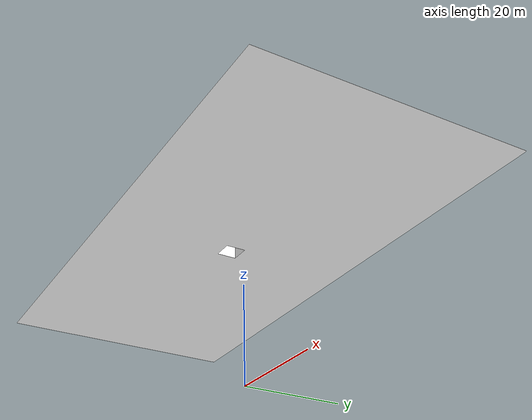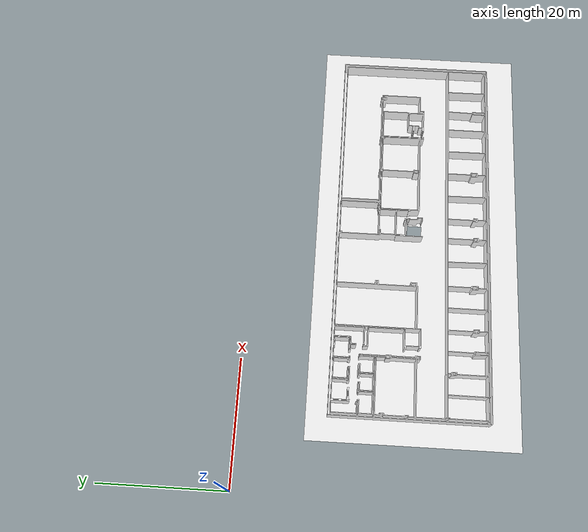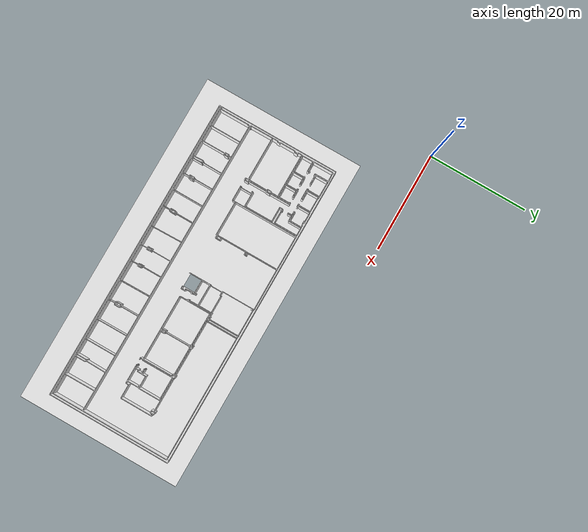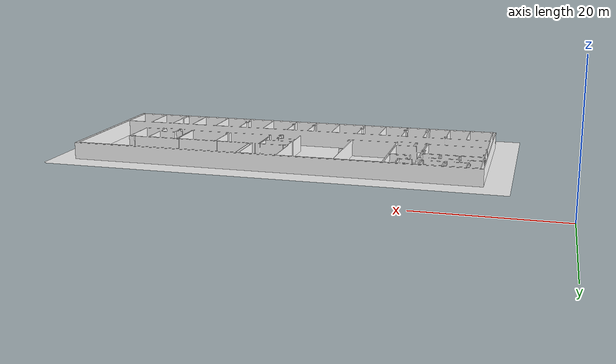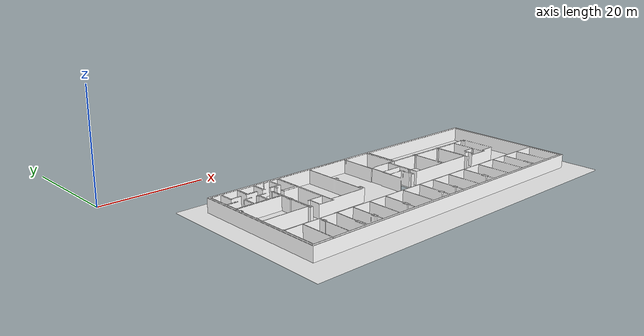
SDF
<?xml version='1.0' encoding='utf-8'?>
<sdf version="1.7">
  <model name="industrial_soterrani_1">
    <static>true</static>
    <link name="floor_1">
      <visual name="visual">
        <geometry>
          <mesh>
            <uri>model://industrial_soterrani_1/meshes/floor_1.obj</uri>
          </mesh>
        </geometry>
        <material>
          <diffuse>1.0 1.0 1.0</diffuse>
          <specular>0.1 0.1 0.1</specular>
          <pbr>
            <metal>
              <metalness>0.0</metalness>
              <albedo_map>model://industrial_soterrani_1/meshes/blue_linoleum.png</albedo_map>
            </metal>
          </pbr>
          <script>
            <uri>model://industrial_soterrani_1/meshes/</uri>
            <name>floor_1_Diffuse</name>
          </script>
        </material>
      </visual>
      <collision name="collision">
        <geometry>
          <mesh>
            <uri>model://industrial_soterrani_1/meshes/floor_1.obj</uri>
          </mesh>
        </geometry>
        <surface>
          <contact>
            <collide_bitmask>0x01</collide_bitmask>
          </contact>
        </surface>
      </collision>
    </link>
    <link name="wall_1">
      <visual name="wall_1">
        <geometry>
          <mesh>
            <uri>model://industrial_soterrani_1/meshes/wall_1.obj</uri>
          </mesh>
        </geometry>
        <transparency>0.0</transparency>
        <material>
          <diffuse>1.0 1.0 1.0</diffuse>
          <specular>0.1 0.1 0.1</specular>
          <pbr>
            <metal>
              <metalness>0.0</metalness>
              <albedo_map>model://industrial_soterrani_1/meshes/default.png</albedo_map>
            </metal>
          </pbr>
          <script>
            <uri>model://industrial_soterrani_1/meshes/</uri>
            <name>wall_1_Diffuse</name>
          </script>
        </material>
      </visual>
      <collision name="collision">
        <geometry>
          <mesh>
            <uri>model://industrial_soterrani_1/meshes/wall_1.obj</uri>
          </mesh>
        </geometry>
        <surface>
          <contact>
            <collide_bitmask>0x01</collide_bitmask>
          </contact>
        </surface>
      </collision>
      <pose>11.75362478336266 -38.48034467806924 0 0 0 0</pose>
    </link>
  </model>
</sdf>
